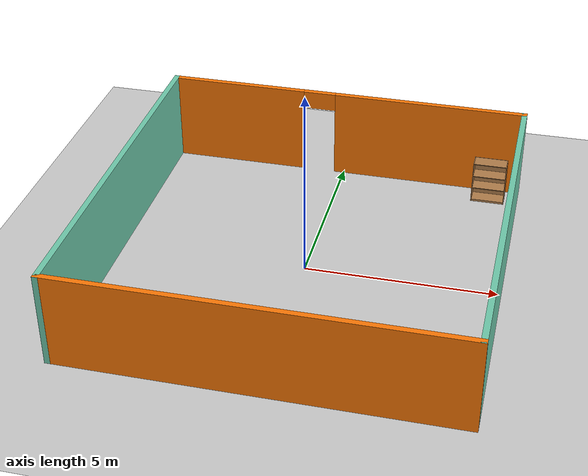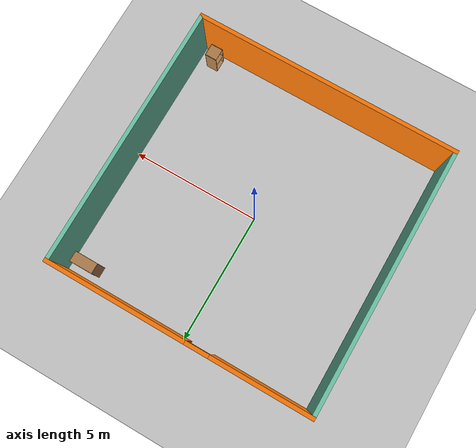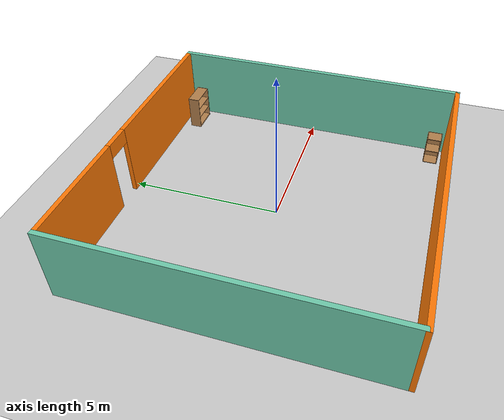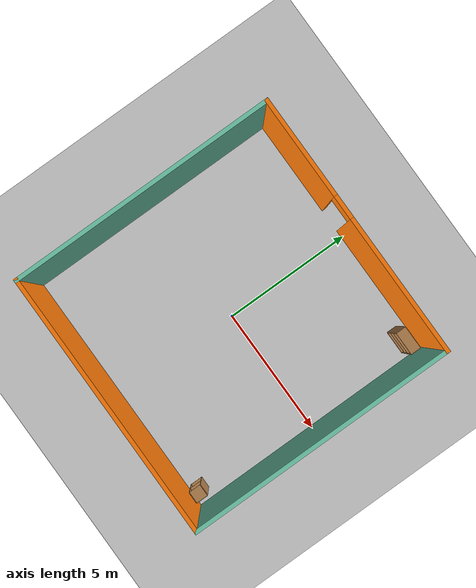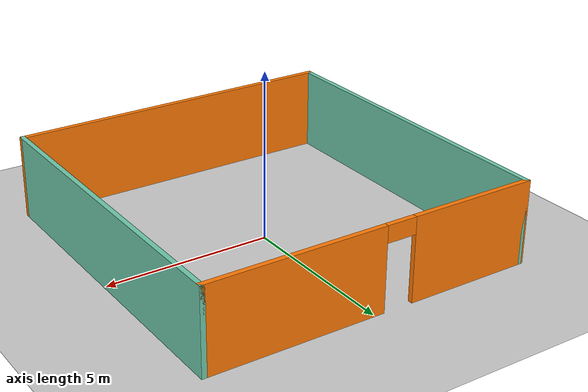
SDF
<sdf version="1.6">
 <world name="default">
  <light name="sun" type="directional">
   <pose>0 0 10 0 -0 0</pose>
   <diffuse>0.8 0.8 0.8 1</diffuse>
   <specular>0.2 0.2 0.2 1</specular>
   <attenuation>
    <range>1000</range>
    <constant>0.9</constant>
    <linear>0.01</linear>
    <quadratic>0.001</quadratic>
   </attenuation>
   <direction>-0.5 0.1 -0.9</direction>
  </light>
  <model name="ground_plane">
   <static>1</static>
   <link name="link">
    <collision name="collision">
     <geometry><plane><normal>0 0 1</normal><size>100 100</size></plane></geometry>
     <surface>
      <contact><collide_bitmask>65535</collide_bitmask></contact>
      <friction><ode><mu>100</mu><mu2>50</mu2></ode></friction>
     </surface>
    </collision>
    <visual name="visual">
     <cast_shadows>0</cast_shadows>
     <geometry><plane><normal>0 0 1</normal><size>100 100</size></plane></geometry>
     <material>
      <script><uri>file://media/materials/scripts/gazebo.material</uri><name>Gazebo/Grey</name></script>
     </material>
    </visual>
   </link>
  </model>
  <gravity>0 0 -9.8</gravity>
  <magnetic_field>6e-06 2.3e-05 -4.2e-05</magnetic_field>
  <atmosphere type="adiabatic"/>
  <physics name="default_physics" default="0" type="ode">
   <max_step_size>0.001</max_step_size>
   <real_time_factor>1</real_time_factor>
   <real_time_update_rate>1000</real_time_update_rate>
  </physics>
  <scene><ambient>0.4 0.4 0.4 1</ambient><background>0.7 0.7 0.7 1</background><shadows>1</shadows></scene>
  <spherical_coordinates>
   <surface_model>EARTH_WGS84</surface_model>
   <latitude_deg>0</latitude_deg>
   <longitude_deg>0</longitude_deg>
   <elevation>0</elevation>
   <heading_deg>0</heading_deg>
  </spherical_coordinates>
  <model name="bookshelf">
   <static>1</static>
   <link name="link">
    <inertial><mass>1</mass></inertial>
    <collision name="back">
     <pose>0 0.005 0.6 0 -0 0</pose>
     <geometry><box><size>0.9 0.01 1.2</size></box></geometry>
    </collision>
    <visual name="visual1">
     <pose>0 0.005 0.6 0 -0 0</pose>
     <geometry><box><size>0.9 0.01 1.2</size></box></geometry>
     <material>
      <script><uri>file://media/materials/scripts/gazebo.material</uri><name>Gazebo/Wood</name></script>
     </material>
    </visual>
    <collision name="left_side">
     <pose>0.45 -0.195 0.6 0 -0 0</pose>
     <geometry><box><size>0.02 0.4 1.2</size></box></geometry>
    </collision>
    <visual name="visual2">
     <pose>0.45 -0.195 0.6 0 -0 0</pose>
     <geometry><box><size>0.02 0.4 1.2</size></box></geometry>
     <material>
      <script><uri>file://media/materials/scripts/gazebo.material</uri><name>Gazebo/Wood</name></script>
     </material>
    </visual>
    <collision name="right_side">
     <pose>-0.45 -0.195 0.6 0 -0 0</pose>
     <geometry><box><size>0.02 0.4 1.2</size></box></geometry>
    </collision>
    <visual name="visual3">
     <pose>-0.45 -0.195 0.6 0 -0 0</pose>
     <geometry><box><size>0.02 0.4 1.2</size></box></geometry>
     <material>
      <script><uri>file://media/materials/scripts/gazebo.material</uri><name>Gazebo/Wood</name></script>
     </material>
    </visual>
    <collision name="bottom">
     <pose>0 -0.195 0.03 0 -0 0</pose>
     <geometry><box><size>0.88 0.4 0.06</size></box></geometry>
    </collision>
    <visual name="visual4">
     <pose>0 -0.195 0.03 0 -0 0</pose>
     <geometry><box><size>0.88 0.4 0.06</size></box></geometry>
     <material>
      <script><uri>file://media/materials/scripts/gazebo.material</uri><name>Gazebo/Wood</name></script>
     </material>
    </visual>
    <collision name="top">
     <pose>0 -0.195 1.19 0 -0 0</pose>
     <geometry><box><size>0.88 0.4 0.02</size></box></geometry>
    </collision>
    <visual name="visual5">
     <pose>0 -0.195 1.19 0 -0 0</pose>
     <geometry><box><size>0.88 0.4 0.02</size></box></geometry>
     <material>
      <script><uri>file://media/materials/scripts/gazebo.material</uri><name>Gazebo/Wood</name></script>
     </material>
    </visual>
    <collision name="low_shelf">
     <pose>0 -0.195 0.43 0 -0 0</pose>
     <geometry><box><size>0.88 0.4 0.02</size></box></geometry>
    </collision>
    <visual name="visual6">
     <pose>0 -0.195 0.43 0 -0 0</pose>
     <geometry><box><size>0.88 0.4 0.02</size></box></geometry>
     <material>
      <script><uri>file://media/materials/scripts/gazebo.material</uri><name>Gazebo/Wood</name></script>
     </material>
    </visual>
    <collision name="high_shelf">
     <pose>0 -0.195 0.8 0 -0 0</pose>
     <geometry><box><size>0.88 0.4 0.02</size></box></geometry>
    </collision>
    <visual name="visual7">
     <pose>0 -0.195 0.8 0 -0 0</pose>
     <geometry><box><size>0.88 0.4 0.02</size></box></geometry>
     <material>
      <script><uri>file://media/materials/scripts/gazebo.material</uri><name>Gazebo/Wood</name></script>
     </material>
    </visual>
   </link>
   <pose>4.25018 4.64652 0 0 -0 0</pose>
  </model>
  <model name="cabinet">
   <static>1</static>
   <link name="cabinet_bottom_plate">
    <inertial>
     <pose>0 0 -1 0 -0 0</pose>
     <inertia><ixx>2.05</ixx><ixy>0</ixy><ixz>0</ixz><iyy>2.05</iyy><iyz>0</iyz><izz>2.05</izz></inertia>
     <mass>25</mass>
    </inertial>
    <collision name="cabinet_bottom_plate_geom">
     <pose>0 0 0.01 0 -0 0</pose>
     <geometry><box><size>0.45 0.45 0.02</size></box></geometry>
    </collision>
    <visual name="cabinet_bottom_plate_geom_visual">
     <pose>0 0 0.01 0 -0 0</pose>
     <geometry><box><size>0.45 0.45 0.02</size></box></geometry>
     <material>
      <script><uri>file://media/materials/scripts/gazebo.material</uri><name>Gazebo/Wood</name></script>
     </material>
    </visual>
    <collision name="cabinet_bottom_plate_geom_cabinet_back_plate">
     <pose>0.235 0 0.51 0 -0 0</pose>
     <geometry><box><size>0.02 0.45 1.02</size></box></geometry>
    </collision>
    <visual name="cabinet_bottom_plate_geom_cabinet_back_plate_visual">
     <pose>0.235 0 0.51 0 -0 0</pose>
     <geometry><box><size>0.02 0.45 1.02</size></box></geometry>
     <material>
      <script><uri>file://media/materials/scripts/gazebo.material</uri><name>Gazebo/Wood</name></script>
     </material>
    </visual>
    <collision name="cabinet_bottom_plate_geom_cabinet_left_plate">
     <pose>0 0.235 0.51 0 -0 0</pose>
     <geometry><box><size>0.45 0.02 1.02</size></box></geometry>
    </collision>
    <visual name="cabinet_bottom_plate_geom_cabinet_left_plate_visual">
     <pose>0 0.235 0.51 0 -0 0</pose>
     <geometry><box><size>0.45 0.02 1.02</size></box></geometry>
     <material>
      <script><uri>file://media/materials/scripts/gazebo.material</uri><name>Gazebo/Wood</name></script>
     </material>
    </visual>
    <collision name="cabinet_bottom_plate_geom_cabinet_middle_plate">
     <pose>0 0 0.51 0 -0 0</pose>
     <geometry><box><size>0.45 0.45 0.02</size></box></geometry>
    </collision>
    <visual name="cabinet_bottom_plate_geom_cabinet_middle_plate_visual">
     <pose>0 0 0.51 0 -0 0</pose>
     <geometry><box><size>0.45 0.45 0.02</size></box></geometry>
     <material>
      <script><uri>file://media/materials/scripts/gazebo.material</uri><name>Gazebo/Wood</name></script>
     </material>
    </visual>
    <collision name="cabinet_bottom_plate_geom_cabinet_right_plate">
     <pose>0 -0.235 0.51 0 -0 0</pose>
     <geometry><box><size>0.45 0.02 1.02</size></box></geometry>
    </collision>
    <visual name="cabinet_bottom_plate_geom_cabinet_right_plate_visual">
     <pose>0 -0.235 0.51 0 -0 0</pose>
     <geometry><box><size>0.45 0.02 1.02</size></box></geometry>
     <material>
      <script><uri>file://media/materials/scripts/gazebo.material</uri><name>Gazebo/Wood</name></script>
     </material>
    </visual>
    <collision name="cabinet_bottom_plate_geom_cabinet_top_plate">
     <pose>0 0 1.01 0 -0 0</pose>
     <geometry><box><size>0.45 0.45 0.02</size></box></geometry>
    </collision>
    <visual name="cabinet_bottom_plate_geom_cabinet_top_plate_visual">
     <pose>0 0 1.01 0 -0 0</pose>
     <geometry><box><size>0.45 0.45 0.02</size></box></geometry>
     <material>
      <script><uri>file://media/materials/scripts/gazebo.material</uri><name>Gazebo/Wood</name></script>
     </material>
    </visual>
   </link>
   <pose>4.34107 -4.55557 0 0 -0 0</pose>
  </model>
  <model name="slam_box_0">
   <link name="Wall_10">
    <collision name="Wall_10_Collision">
     <geometry><box><size>10.15 0.15 2.5</size></box></geometry>
     <pose>0 0 1.25 0 -0 0</pose>
    </collision>
    <visual name="Wall_10_Visual">
     <pose>0 0 1.25 0 -0 0</pose>
     <geometry><box><size>10.15 0.15 2.5</size></box></geometry>
     <material>
      <script><uri>file://media/materials/scripts/gazebo.material</uri><name>Gazebo/Grey</name></script>
      <ambient>0.996078 0.47451 0.0196078 1</ambient>
     </material>
     <meta><layer>0</layer></meta>
    </visual>
    <pose>0 -5 0 0 -0 3.14159</pose>
   </link>
   <link name="Wall_12">
    <collision name="Wall_12_Collision">
     <geometry><box><size>10.15 0.15 2.5</size></box></geometry>
     <pose>0 0 1.25 0 -0 0</pose>
    </collision>
    <visual name="Wall_12_Visual">
     <pose>0 0 1.25 0 -0 0</pose>
     <geometry><box><size>10.15 0.15 2.5</size></box></geometry>
     <material>
      <script><uri>file://media/materials/scripts/gazebo.material</uri><name>Gazebo/Grey</name></script>
      <ambient>0.435294 0.796078 0.67451 1</ambient>
     </material>
     <meta><layer>0</layer></meta>
    </visual>
    <pose>5 0 0 0 0 -1.5708</pose>
   </link>
   <link name="Wall_14">
    <pose>0 5 0 0 -0 0</pose>
    <visual name="Wall_14_Visual_0">
     <pose>-3.1341 0 1.25 0 -0 0</pose>
     <geometry><box><size>3.88181 0.15 2.5</size></box></geometry>
     <material>
      <script><uri>file://media/materials/scripts/gazebo.material</uri><name>Gazebo/Grey</name></script>
      <ambient>0.996078 0.47451 0.0196078 1</ambient>
     </material>
     <meta><layer>0</layer></meta>
    </visual>
    <collision name="Wall_14_Collision_0">
     <geometry><box><size>3.88181 0.15 2.5</size></box></geometry>
     <pose>-3.1341 0 1.25 0 -0 0</pose>
    </collision>
    <visual name="Wall_14_Visual_1">
     <pose>2.3909 0 1.25 0 -0 0</pose>
     <geometry><box><size>5.36819 0.15 2.5</size></box></geometry>
     <material>
      <script><uri>file://media/materials/scripts/gazebo.material</uri><name>Gazebo/Grey</name></script>
      <ambient>0.996078 0.47451 0.0196078 1</ambient>
     </material>
     <meta><layer>0</layer></meta>
    </visual>
    <collision name="Wall_14_Collision_1">
     <geometry><box><size>5.36819 0.15 2.5</size></box></geometry>
     <pose>2.3909 0 1.25 0 -0 0</pose>
    </collision>
    <visual name="Wall_14_Visual_2">
     <pose>-0.743192 0 2.25 0 -0 0</pose>
     <geometry><box><size>0.9 0.15 0.5</size></box></geometry>
     <material>
      <script><uri>file://media/materials/scripts/gazebo.material</uri><name>Gazebo/Grey</name></script>
      <ambient>0.996078 0.47451 0.0196078 1</ambient>
     </material>
     <meta><layer>0</layer></meta>
    </visual>
    <collision name="Wall_14_Collision_2">
     <geometry><box><size>0.9 0.15 0.5</size></box></geometry>
     <pose>-0.743192 0 2.25 0 -0 0</pose>
    </collision>
   </link>
   <link name="Wall_8">
    <collision name="Wall_8_Collision">
     <geometry><box><size>10.15 0.15 2.5</size></box></geometry>
     <pose>0 0 1.25 0 -0 0</pose>
    </collision>
    <visual name="Wall_8_Visual">
     <pose>0 0 1.25 0 -0 0</pose>
     <geometry><box><size>10.15 0.15 2.5</size></box></geometry>
     <material>
      <script><uri>file://media/materials/scripts/gazebo.material</uri><name>Gazebo/Grey</name></script>
      <ambient>0.435294 0.796078 0.67451 1</ambient>
     </material>
     <meta><layer>0</layer></meta>
    </visual>
    <pose>-5 0 0 0 -0 1.5708</pose>
   </link>
   <static>1</static>
  </model>
 </world>
</sdf>
